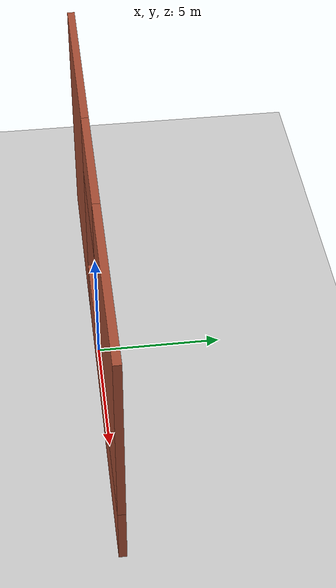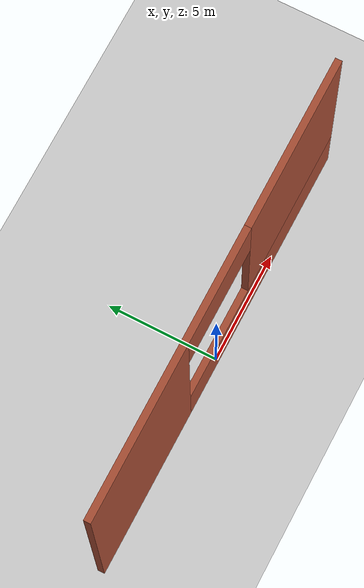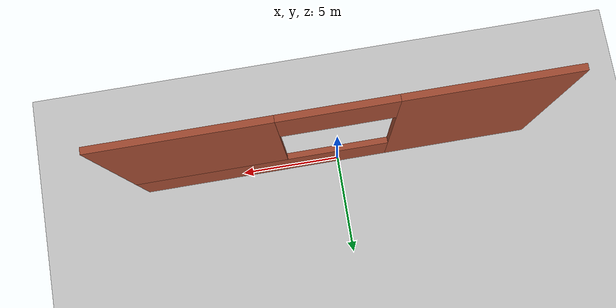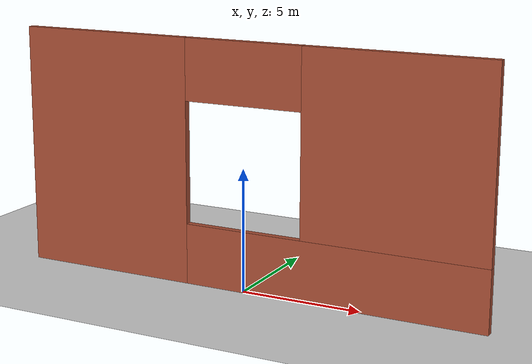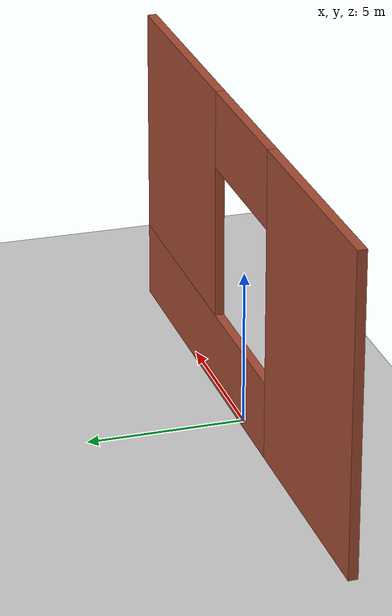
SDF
<?xml version="1.0"?>
<sdf version="1.4">
  <world name="default">
    <include>
      <uri>model://ground_plane</uri>
    </include>
    <include>
      <uri>model://sun</uri>
    </include>

    <!-- Only one ROS interface plugin is required per world, as any other plugin can connect a Gazebo
         topic to a ROS topic (or vise versa). -->
    <plugin name="ros_interface_plugin" filename="librotors_gazebo_ros_interface_plugin.so" />

    <spherical_coordinates>
      <surface_model>EARTH_WGS84</surface_model>
      <latitude_deg>47.3667</latitude_deg>
      <longitude_deg>8.5500</longitude_deg>
      <elevation>500.0</elevation>
      <heading_deg>0</heading_deg>
    </spherical_coordinates>
    <physics type='ode'>
      <ode>
        <solver>
          <type>quick</type>
          <iters>1000</iters>
          <sor>1.3</sor>
        </solver>
        <constraints>
          <cfm>0</cfm>
          <erp>0.2</erp>
          <contact_max_correcting_vel>100</contact_max_correcting_vel>
          <contact_surface_layer>0.001</contact_surface_layer>
        </constraints>
      </ode>
      <max_step_size>0.01</max_step_size>
      <real_time_factor>1</real_time_factor>
      <real_time_update_rate>100</real_time_update_rate>
      <gravity>0 0 -9.8</gravity>
    </physics>

    <model name='obstacle1'>
      <pose>0.043262 0.000263 0 0 -0 0</pose>
      <link name='Wall_0'>
        <pose>0 0 0 0 -0 0</pose>
        <visual name='Wall_0_Visual_0'>
          <pose>-6.27163 0 5 0 -0 0</pose>
          <geometry>
            <box>
              <size>7.45674 0.3 10</size>
            </box>
          </geometry>
          <material>
            <script>
              <uri>file://media/materials/scripts/gazebo.material</uri>
              <name>Gazebo/Bricks</name>
            </script>
            <ambient>1 1 1 1</ambient>
          </material>
          <meta>
            <layer>0</layer>
          </meta>
        </visual>
        <collision name='Wall_0_Collision_0'>
          <geometry>
            <box>
              <size>7.45674 0.3 10</size>
            </box>
          </geometry>
          <pose>-6.27163 0 5 0 -0 0</pose>
          <max_contacts>10</max_contacts>
          <surface>
            <contact>
              <ode/>
            </contact>
            <bounce/>
            <friction>
              <torsional>
                <ode/>
              </torsional>
              <ode/>
            </friction>
          </surface>
        </collision>
        <visual name='Wall_0_Visual_1'>
          <pose>3.72837 0 1.25 0 -0 0</pose>
          <geometry>
            <box>
              <size>12.5433 0.3 2.5</size>
            </box>
          </geometry>
          <material>
            <script>
              <uri>file://media/materials/scripts/gazebo.material</uri>
              <name>Gazebo/Bricks</name>
            </script>
            <ambient>1 1 1 1</ambient>
          </material>
          <meta>
            <layer>0</layer>
          </meta>
        </visual>
        <collision name='Wall_0_Collision_1'>
          <geometry>
            <box>
              <size>12.5433 0.3 2.5</size>
            </box>
          </geometry>
          <pose>3.72837 0 1.25 0 -0 0</pose>
          <max_contacts>10</max_contacts>
          <surface>
            <contact>
              <ode/>
            </contact>
            <bounce/>
            <friction>
              <torsional>
                <ode/>
              </torsional>
              <ode/>
            </friction>
          </surface>
        </collision>
        <visual name='Wall_0_Visual_2'>
          <pose>6.22837 0 6.25 0 -0 0</pose>
          <geometry>
            <box>
              <size>7.54326 0.3 7.5</size>
            </box>
          </geometry>
          <material>
            <script>
              <uri>file://media/materials/scripts/gazebo.material</uri>
              <name>Gazebo/Bricks</name>
            </script>
            <ambient>1 1 1 1</ambient>
          </material>
          <meta>
            <layer>0</layer>
          </meta>
        </visual>
        <collision name='Wall_0_Collision_2'>
          <geometry>
            <box>
              <size>7.54326 0.3 7.5</size>
            </box>
          </geometry>
          <pose>6.22837 0 6.25 0 -0 0</pose>
          <max_contacts>10</max_contacts>
          <surface>
            <contact>
              <ode/>
            </contact>
            <bounce/>
            <friction>
              <torsional>
                <ode/>
              </torsional>
              <ode/>
            </friction>
          </surface>
        </collision>
        <visual name='Wall_0_Visual_3'>
          <pose>-0.043263 0 8.75 0 -0 0</pose>
          <geometry>
            <box>
              <size>5 0.3 2.5</size>
            </box>
          </geometry>
          <material>
            <script>
              <uri>file://media/materials/scripts/gazebo.material</uri>
              <name>Gazebo/Bricks</name>
            </script>
            <ambient>1 1 1 1</ambient>
          </material>
          <meta>
            <layer>0</layer>
          </meta>
        </visual>
        <collision name='Wall_0_Collision_3'>
          <geometry>
            <box>
              <size>5 0.3 2.5</size>
            </box>
          </geometry>
          <pose>-0.043263 0 8.75 0 -0 0</pose>
          <max_contacts>10</max_contacts>
          <surface>
            <contact>
              <ode/>
            </contact>
            <bounce/>
            <friction>
              <torsional>
                <ode/>
              </torsional>
              <ode/>
            </friction>
          </surface>
        </collision>
        <self_collide>0</self_collide>
        <enable_wind>0</enable_wind>
        <kinematic>0</kinematic>
      </link>
      <static>1</static>
    </model>

  </world>
</sdf>
